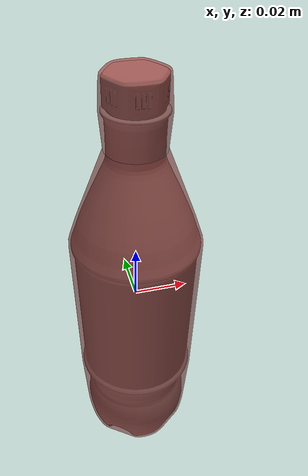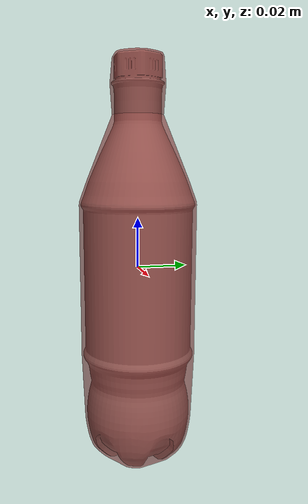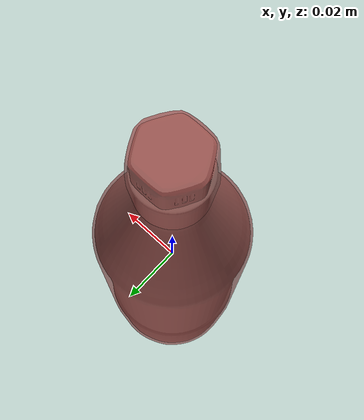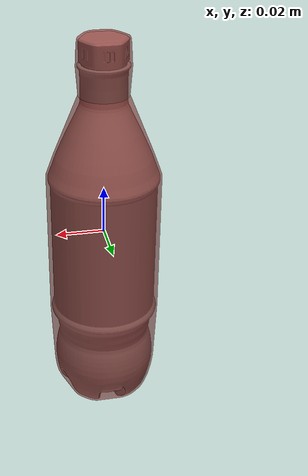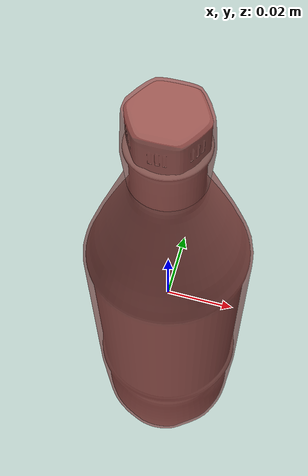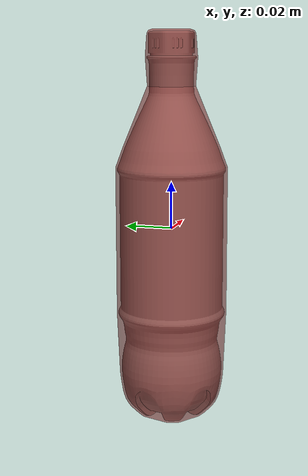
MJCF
<mujoco model="bottled_drink_7">
  <asset>
    <mesh file="visual/model_normalized_0.obj" name="model_normalized_0_vis" scale="0.16499999999999998 0.16499999999999998 0.16499999999999998" refquat="1.0 0.0 0.0 0.0"/>
    <texture type="2d" name="image0" file="visual/image0.png"/>
    <material name="Scene_-_Root.008" texture="image0" specular="0.5" shininess="0.25"/>
    <mesh file="collision/collision_mesh_collision_0.obj" name="bottled_collision_mesh_0" scale="0.16499999999999998 0.16499999999999998 0.16499999999999998" refquat="1.0 0.0 0.0 0.0"/>
    <mesh file="collision/collision_mesh_collision_1.obj" name="bottled_collision_mesh_1" scale="0.16499999999999998 0.16499999999999998 0.16499999999999998" refquat="1.0 0.0 0.0 0.0"/>
  </asset>
  <default>
    <default class="region">
      <geom group="1" conaffinity="0" contype="0" rgba="0 1 0 0"/>
    </default>
    <default class="collision">
      <geom group="0" rgba="0.5 0 0 0.5" density="1000.0"/>
    </default>
  </default>
  <worldbody>
    <body>
      <body name="object">
        <geom solimp="0.998 0.998 0.001" solref="0.001 1" density="100" friction="0.95 0.3 0.1" type="mesh" mesh="model_normalized_0_vis" conaffinity="0" contype="0" group="1" material="Scene_-_Root.008"/>
        <geom class="region" name="reg_bbox" type="box" pos="-2.474999998697269e-09 -2.124374999999262e-06 6.299700000000712e-05" size="0.023687381024999996 0.023689331324999997 0.08334450629999998"/>
        <geom mesh="bottled_collision_mesh_0" type="mesh" class="collision"/>
        <geom mesh="bottled_collision_mesh_1" type="mesh" class="collision"/>
      </body>
    </body>
  </worldbody>
</mujoco>
